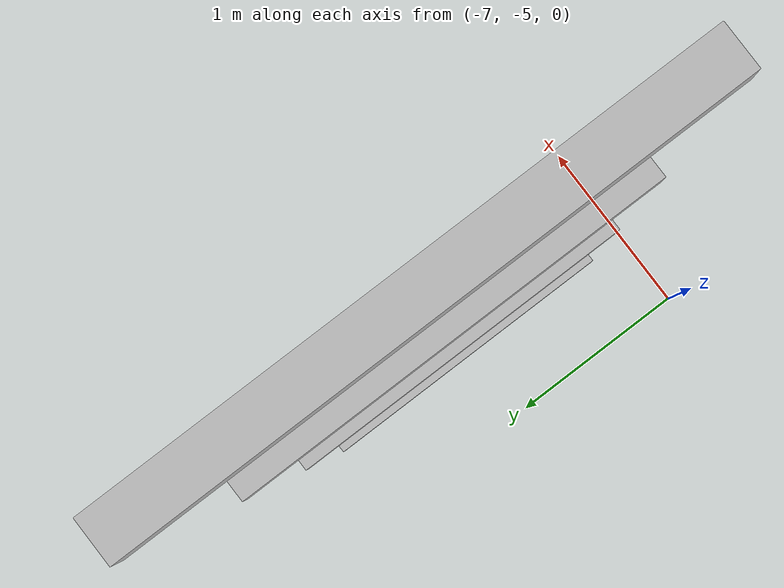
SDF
<sdf version="1.7">
 <world name="default">
  <model name="orthogonal_747_2.000.15_TS">
   <static>1</static>
   <link name="y_link_0_0_0">
    <inertial>
     <mass>1</mass>
     <inertia>
      <ixx>0.166667</ixx>
      <ixy>0</ixy>
      <ixz>0</ixz>
      <iyy>0.166667</iyy>
      <iyz>0</iyz>
      <izz>0.166667</izz>
     </inertia>
    </inertial>
    <pose>0 1.075 1.075 0 -0 0</pose>
    <visual name="visual_0">
     <laser_retro>8</laser_retro>
     <geometry><box><size>0.15 1e-06 0.15</size></box></geometry>
     <material>
      <script><name>Gazebo/Grey</name><uri>file://media/materials/scripts/gazebo.material</uri></script>
      <shader type="pixel"><normal_map>__default__</normal_map></shader>
      <ambient>0.678 0.498 0.659 1</ambient>
      <diffuse>0.7 0.7 0.7 1</diffuse>
      <specular>0.01 0.01 0.01 1</specular>
      <emissive>0 0 0 1</emissive>
     </material>
     <pose>0 -1 0 0 -0 0</pose>
     <transparency>1</transparency>
    </visual>
    <visual name="visual_1">
     <laser_retro>9</laser_retro>
     <geometry><box><size>0.15 1e-06 0.15</size></box></geometry>
     <material>
      <script><name>Gazebo/Grey</name><uri>file://media/materials/scripts/gazebo.material</uri></script>
      <shader type="pixel"><normal_map>__default__</normal_map></shader>
      <ambient>0.447 0.624 0.812 1</ambient>
      <diffuse>0.7 0.7 0.7 1</diffuse>
      <specular>0.01 0.01 0.01 1</specular>
      <emissive>0 0 0 1</emissive>
     </material>
     <pose>0 1 0 0 -0 0</pose>
     <transparency>1</transparency>
    </visual>
    <visual name="visual_2">
     <laser_retro>10</laser_retro>
     <geometry><box><size>0.15 2 1e-06</size></box></geometry>
     <material>
      <script><name>Gazebo/Grey</name><uri>file://media/materials/scripts/gazebo.material</uri></script>
      <shader type="pixel"><normal_map>__default__</normal_map></shader>
      <ambient>0.988 0.686 0.243 1</ambient>
      <diffuse>0.7 0.7 0.7 1</diffuse>
      <specular>0.01 0.01 0.01 1</specular>
      <emissive>0 0 0 1</emissive>
     </material>
     <pose>0 0 -0.075 0 -0 0</pose>
     <transparency>1</transparency>
    </visual>
    <visual name="visual_3">
     <laser_retro>11</laser_retro>
     <geometry><box><size>1e-06 2 0.15</size></box></geometry>
     <material>
      <script><name>Gazebo/Grey</name><uri>file://media/materials/scripts/gazebo.material</uri></script>
      <shader type="pixel"><normal_map>__default__</normal_map></shader>
      <ambient>0.988 0.914 0.31 1</ambient>
      <diffuse>0.7 0.7 0.7 1</diffuse>
      <specular>0.01 0.01 0.01 1</specular>
      <emissive>0 0 0 1</emissive>
     </material>
     <pose>0.075 0 0 0 -0 0</pose>
     <transparency>1</transparency>
    </visual>
    <visual name="visual_4">
     <laser_retro>12</laser_retro>
     <geometry><box><size>0.15 2 1e-06</size></box></geometry>
     <material>
      <script><name>Gazebo/Grey</name><uri>file://media/materials/scripts/gazebo.material</uri></script>
      <shader type="pixel"><normal_map>__default__</normal_map></shader>
      <ambient>0.937 0.161 0.161 1</ambient>
      <diffuse>0.7 0.7 0.7 1</diffuse>
      <specular>0.01 0.01 0.01 1</specular>
      <emissive>0 0 0 1</emissive>
     </material>
     <pose>0 0 0.075 0 -0 0</pose>
     <transparency>1</transparency>
    </visual>
    <visual name="visual_5">
     <laser_retro>13</laser_retro>
     <geometry><box><size>1e-06 2 0.15</size></box></geometry>
     <material>
      <script><name>Gazebo/Grey</name><uri>file://media/materials/scripts/gazebo.material</uri></script>
      <shader type="pixel"><normal_map>__default__</normal_map></shader>
      <ambient>0.541 0.886 0.204 1</ambient>
      <diffuse>0.7 0.7 0.7 1</diffuse>
      <specular>0.01 0.01 0.01 1</specular>
      <emissive>0 0 0 1</emissive>
     </material>
     <pose>-0.075 0 0 0 -0 0</pose>
     <transparency>1</transparency>
    </visual>
    <visual name="visual_texture">
     <geometry><box><size>0.149985 1.9998 0.149985</size></box></geometry>
     <material>
      <script>
       <uri>model://BASE_MODELS/simple_block_v2_textured/materials/scripts</uri>
       <uri>model://BASE_MODELS/simple_block_v2_textured/materials/textures</uri>
       <name>metal</name>
      </script>
     </material>
     <laser_retro>14</laser_retro>
    </visual>
    <collision name="collision">
     <geometry><box><size>0.15 2 0.15</size></box></geometry>
     <surface>
      <friction>
       <ode><mu>1</mu><mu2>1</mu2><fdir1>0 0 0</fdir1><slip1>0</slip1><slip2>0</slip2></ode>
       <torsional>
        <coefficient>1</coefficient>
        <patch_radius>0</patch_radius>
        <surface_radius>0</surface_radius>
        <use_patch_radius>1</use_patch_radius>
        <ode><slip>0</slip></ode>
       </torsional>
      </friction>
      <bounce><restitution_coefficient>0</restitution_coefficient><threshold>1e+06</threshold></bounce>
      <contact>
       <collide_without_contact>0</collide_without_contact>
       <collide_without_contact_bitmask>1</collide_without_contact_bitmask>
       <collide_bitmask>1</collide_bitmask>
       <ode>
        <soft_cfm>0</soft_cfm>
        <soft_erp>0.2</soft_erp>
        <kp>1e+13</kp>
        <kd>1</kd>
        <max_vel>0.01</max_vel>
        <min_depth>0</min_depth>
       </ode>
       <bullet>
        <split_impulse>1</split_impulse>
        <split_impulse_penetration_threshold>-0.01</split_impulse_penetration_threshold>
        <soft_cfm>0</soft_cfm>
        <soft_erp>0.2</soft_erp>
        <kp>1e+13</kp>
        <kd>1</kd>
       </bullet>
      </contact>
     </surface>
    </collision>
   </link>
   <link name="y_link_1_0_0">
    <inertial>
     <mass>1</mass>
     <inertia>
      <ixx>0.166667</ixx>
      <ixy>0</ixy>
      <ixz>0</ixz>
      <iyy>0.166667</iyy>
      <iyz>0</iyz>
      <izz>0.166667</izz>
     </inertia>
    </inertial>
    <pose>0 1.075 3.225 0 -0 0</pose>
    <visual name="visual_0">
     <laser_retro>757</laser_retro>
     <geometry><box><size>0.15 1e-06 0.15</size></box></geometry>
     <material>
      <script><name>Gazebo/Grey</name><uri>file://media/materials/scripts/gazebo.material</uri></script>
      <shader type="pixel"><normal_map>__default__</normal_map></shader>
      <ambient>0.678 0.498 0.659 1</ambient>
      <diffuse>0.7 0.7 0.7 1</diffuse>
      <specular>0.01 0.01 0.01 1</specular>
      <emissive>0 0 0 1</emissive>
     </material>
     <pose>0 -1 0 0 -0 0</pose>
     <transparency>1</transparency>
    </visual>
    <visual name="visual_1">
     <laser_retro>758</laser_retro>
     <geometry><box><size>0.15 1e-06 0.15</size></box></geometry>
     <material>
      <script><name>Gazebo/Grey</name><uri>file://media/materials/scripts/gazebo.material</uri></script>
      <shader type="pixel"><normal_map>__default__</normal_map></shader>
      <ambient>0.447 0.624 0.812 1</ambient>
      <diffuse>0.7 0.7 0.7 1</diffuse>
      <specular>0.01 0.01 0.01 1</specular>
      <emissive>0 0 0 1</emissive>
     </material>
     <pose>0 1 0 0 -0 0</pose>
     <transparency>1</transparency>
    </visual>
    <visual name="visual_2">
     <laser_retro>759</laser_retro>
     <geometry><box><size>0.15 2 1e-06</size></box></geometry>
     <material>
      <script><name>Gazebo/Grey</name><uri>file://media/materials/scripts/gazebo.material</uri></script>
      <shader type="pixel"><normal_map>__default__</normal_map></shader>
      <ambient>0.988 0.686 0.243 1</ambient>
      <diffuse>0.7 0.7 0.7 1</diffuse>
      <specular>0.01 0.01 0.01 1</specular>
      <emissive>0 0 0 1</emissive>
     </material>
     <pose>0 0 -0.075 0 -0 0</pose>
     <transparency>1</transparency>
    </visual>
    <visual name="visual_3">
     <laser_retro>760</laser_retro>
     <geometry><box><size>1e-06 2 0.15</size></box></geometry>
     <material>
      <script><name>Gazebo/Grey</name><uri>file://media/materials/scripts/gazebo.material</uri></script>
      <shader type="pixel"><normal_map>__default__</normal_map></shader>
      <ambient>0.988 0.914 0.31 1</ambient>
      <diffuse>0.7 0.7 0.7 1</diffuse>
      <specular>0.01 0.01 0.01 1</specular>
      <emissive>0 0 0 1</emissive>
     </material>
     <pose>0.075 0 0 0 -0 0</pose>
     <transparency>1</transparency>
    </visual>
    <visual name="visual_4">
     <laser_retro>761</laser_retro>
     <geometry><box><size>0.15 2 1e-06</size></box></geometry>
     <material>
      <script><name>Gazebo/Grey</name><uri>file://media/materials/scripts/gazebo.material</uri></script>
      <shader type="pixel"><normal_map>__default__</normal_map></shader>
      <ambient>0.937 0.161 0.161 1</ambient>
      <diffuse>0.7 0.7 0.7 1</diffuse>
      <specular>0.01 0.01 0.01 1</specular>
      <emissive>0 0 0 1</emissive>
     </material>
     <pose>0 0 0.075 0 -0 0</pose>
     <transparency>1</transparency>
    </visual>
    <visual name="visual_5">
     <laser_retro>762</laser_retro>
     <geometry><box><size>1e-06 2 0.15</size></box></geometry>
     <material>
      <script><name>Gazebo/Grey</name><uri>file://media/materials/scripts/gazebo.material</uri></script>
      <shader type="pixel"><normal_map>__default__</normal_map></shader>
      <ambient>0.541 0.886 0.204 1</ambient>
      <diffuse>0.7 0.7 0.7 1</diffuse>
      <specular>0.01 0.01 0.01 1</specular>
      <emissive>0 0 0 1</emissive>
     </material>
     <pose>-0.075 0 0 0 -0 0</pose>
     <transparency>1</transparency>
    </visual>
    <visual name="visual_texture">
     <geometry><box><size>0.149985 1.9998 0.149985</size></box></geometry>
     <material>
      <script>
       <uri>model://BASE_MODELS/simple_block_v2_textured/materials/scripts</uri>
       <uri>model://BASE_MODELS/simple_block_v2_textured/materials/textures</uri>
       <name>metal</name>
      </script>
     </material>
     <laser_retro>763</laser_retro>
    </visual>
    <collision name="collision">
     <geometry><box><size>0.15 2 0.15</size></box></geometry>
     <surface>
      <friction>
       <ode><mu>1</mu><mu2>1</mu2><fdir1>0 0 0</fdir1><slip1>0</slip1><slip2>0</slip2></ode>
       <torsional>
        <coefficient>1</coefficient>
        <patch_radius>0</patch_radius>
        <surface_radius>0</surface_radius>
        <use_patch_radius>1</use_patch_radius>
        <ode><slip>0</slip></ode>
       </torsional>
      </friction>
      <bounce><restitution_coefficient>0</restitution_coefficient><threshold>1e+06</threshold></bounce>
      <contact>
       <collide_without_contact>0</collide_without_contact>
       <collide_without_contact_bitmask>1</collide_without_contact_bitmask>
       <collide_bitmask>1</collide_bitmask>
       <ode>
        <soft_cfm>0</soft_cfm>
        <soft_erp>0.2</soft_erp>
        <kp>1e+13</kp>
        <kd>1</kd>
        <max_vel>0.01</max_vel>
        <min_depth>0</min_depth>
       </ode>
       <bullet>
        <split_impulse>1</split_impulse>
        <split_impulse_penetration_threshold>-0.01</split_impulse_penetration_threshold>
        <soft_cfm>0</soft_cfm>
        <soft_erp>0.2</soft_erp>
        <kp>1e+13</kp>
        <kd>1</kd>
       </bullet>
      </contact>
     </surface>
    </collision>
   </link>
   <link name="y_link_2_0_0">
    <inertial>
     <mass>1</mass>
     <inertia>
      <ixx>0.166667</ixx>
      <ixy>0</ixy>
      <ixz>0</ixz>
      <iyy>0.166667</iyy>
      <iyz>0</iyz>
      <izz>0.166667</izz>
     </inertia>
    </inertial>
    <pose>0 1.075 5.375 0 -0 0</pose>
    <visual name="visual_0">
     <laser_retro>1660</laser_retro>
     <geometry><box><size>0.15 1e-06 0.15</size></box></geometry>
     <material>
      <script><name>Gazebo/Grey</name><uri>file://media/materials/scripts/gazebo.material</uri></script>
      <shader type="pixel"><normal_map>__default__</normal_map></shader>
      <ambient>0.678 0.498 0.659 1</ambient>
      <diffuse>0.7 0.7 0.7 1</diffuse>
      <specular>0.01 0.01 0.01 1</specular>
      <emissive>0 0 0 1</emissive>
     </material>
     <pose>0 -1 0 0 -0 0</pose>
     <transparency>1</transparency>
    </visual>
    <visual name="visual_1">
     <laser_retro>1661</laser_retro>
     <geometry><box><size>0.15 1e-06 0.15</size></box></geometry>
     <material>
      <script><name>Gazebo/Grey</name><uri>file://media/materials/scripts/gazebo.material</uri></script>
      <shader type="pixel"><normal_map>__default__</normal_map></shader>
      <ambient>0.447 0.624 0.812 1</ambient>
      <diffuse>0.7 0.7 0.7 1</diffuse>
      <specular>0.01 0.01 0.01 1</specular>
      <emissive>0 0 0 1</emissive>
     </material>
     <pose>0 1 0 0 -0 0</pose>
     <transparency>1</transparency>
    </visual>
    <visual name="visual_2">
     <laser_retro>1662</laser_retro>
     <geometry><box><size>0.15 2 1e-06</size></box></geometry>
     <material>
      <script><name>Gazebo/Grey</name><uri>file://media/materials/scripts/gazebo.material</uri></script>
      <shader type="pixel"><normal_map>__default__</normal_map></shader>
      <ambient>0.988 0.686 0.243 1</ambient>
      <diffuse>0.7 0.7 0.7 1</diffuse>
      <specular>0.01 0.01 0.01 1</specular>
      <emissive>0 0 0 1</emissive>
     </material>
     <pose>0 0 -0.075 0 -0 0</pose>
     <transparency>1</transparency>
    </visual>
    <visual name="visual_3">
     <laser_retro>1663</laser_retro>
     <geometry><box><size>1e-06 2 0.15</size></box></geometry>
     <material>
      <script><name>Gazebo/Grey</name><uri>file://media/materials/scripts/gazebo.material</uri></script>
      <shader type="pixel"><normal_map>__default__</normal_map></shader>
      <ambient>0.988 0.914 0.31 1</ambient>
      <diffuse>0.7 0.7 0.7 1</diffuse>
      <specular>0.01 0.01 0.01 1</specular>
      <emissive>0 0 0 1</emissive>
     </material>
     <pose>0.075 0 0 0 -0 0</pose>
     <transparency>1</transparency>
    </visual>
    <visual name="visual_4">
     <laser_retro>1664</laser_retro>
     <geometry><box><size>0.15 2 1e-06</size></box></geometry>
     <material>
      <script><name>Gazebo/Grey</name><uri>file://media/materials/scripts/gazebo.material</uri></script>
      <shader type="pixel"><normal_map>__default__</normal_map></shader>
      <ambient>0.937 0.161 0.161 1</ambient>
      <diffuse>0.7 0.7 0.7 1</diffuse>
      <specular>0.01 0.01 0.01 1</specular>
      <emissive>0 0 0 1</emissive>
     </material>
     <pose>0 0 0.075 0 -0 0</pose>
     <transparency>1</transparency>
    </visual>
    <visual name="visual_5">
     <laser_retro>1665</laser_retro>
     <geometry><box><size>1e-06 2 0.15</size></box></geometry>
     <material>
      <script><name>Gazebo/Grey</name><uri>file://media/materials/scripts/gazebo.material</uri></script>
      <shader type="pixel"><normal_map>__default__</normal_map></shader>
      <ambient>0.541 0.886 0.204 1</ambient>
      <diffuse>0.7 0.7 0.7 1</diffuse>
      <specular>0.01 0.01 0.01 1</specular>
      <emissive>0 0 0 1</emissive>
     </material>
     <pose>-0.075 0 0 0 -0 0</pose>
     <transparency>1</transparency>
    </visual>
    <visual name="visual_texture">
     <geometry><box><size>0.149985 1.9998 0.149985</size></box></geometry>
     <material>
      <script>
       <uri>model://BASE_MODELS/simple_block_v2_textured/materials/scripts</uri>
       <uri>model://BASE_MODELS/simple_block_v2_textured/materials/textures</uri>
       <name>metal</name>
      </script>
     </material>
     <laser_retro>1666</laser_retro>
    </visual>
    <collision name="collision">
     <geometry><box><size>0.15 2 0.15</size></box></geometry>
     <surface>
      <friction>
       <ode><mu>1</mu><mu2>1</mu2><fdir1>0 0 0</fdir1><slip1>0</slip1><slip2>0</slip2></ode>
       <torsional>
        <coefficient>1</coefficient>
        <patch_radius>0</patch_radius>
        <surface_radius>0</surface_radius>
        <use_patch_radius>1</use_patch_radius>
        <ode><slip>0</slip></ode>
       </torsional>
      </friction>
      <bounce><restitution_coefficient>0</restitution_coefficient><threshold>1e+06</threshold></bounce>
      <contact>
       <collide_without_contact>0</collide_without_contact>
       <collide_without_contact_bitmask>1</collide_without_contact_bitmask>
       <collide_bitmask>1</collide_bitmask>
       <ode>
        <soft_cfm>0</soft_cfm>
        <soft_erp>0.2</soft_erp>
        <kp>1e+13</kp>
        <kd>1</kd>
        <max_vel>0.01</max_vel>
        <min_depth>0</min_depth>
       </ode>
       <bullet>
        <split_impulse>1</split_impulse>
        <split_impulse_penetration_threshold>-0.01</split_impulse_penetration_threshold>
        <soft_cfm>0</soft_cfm>
        <soft_erp>0.2</soft_erp>
        <kp>1e+13</kp>
        <kd>1</kd>
       </bullet>
      </contact>
     </surface>
    </collision>
   </link>
   <link name="y_link_3_0_0">
    <inertial>
     <mass>1</mass>
     <inertia>
      <ixx>0.166667</ixx>
      <ixy>0</ixy>
      <ixz>0</ixz>
      <iyy>0.166667</iyy>
      <iyz>0</iyz>
      <izz>0.166667</izz>
     </inertia>
    </inertial>
    <pose>0 1.075 7.525 0 -0 0</pose>
    <visual name="visual_0">
     <laser_retro>2563</laser_retro>
     <geometry><box><size>0.15 1e-06 0.15</size></box></geometry>
     <material>
      <script><name>Gazebo/Grey</name><uri>file://media/materials/scripts/gazebo.material</uri></script>
      <shader type="pixel"><normal_map>__default__</normal_map></shader>
      <ambient>0.678 0.498 0.659 1</ambient>
      <diffuse>0.7 0.7 0.7 1</diffuse>
      <specular>0.01 0.01 0.01 1</specular>
      <emissive>0 0 0 1</emissive>
     </material>
     <pose>0 -1 0 0 -0 0</pose>
     <transparency>1</transparency>
    </visual>
    <visual name="visual_1">
     <laser_retro>2564</laser_retro>
     <geometry><box><size>0.15 1e-06 0.15</size></box></geometry>
     <material>
      <script><name>Gazebo/Grey</name><uri>file://media/materials/scripts/gazebo.material</uri></script>
      <shader type="pixel"><normal_map>__default__</normal_map></shader>
      <ambient>0.447 0.624 0.812 1</ambient>
      <diffuse>0.7 0.7 0.7 1</diffuse>
      <specular>0.01 0.01 0.01 1</specular>
      <emissive>0 0 0 1</emissive>
     </material>
     <pose>0 1 0 0 -0 0</pose>
     <transparency>1</transparency>
    </visual>
    <visual name="visual_2">
     <laser_retro>2565</laser_retro>
     <geometry><box><size>0.15 2 1e-06</size></box></geometry>
     <material>
      <script><name>Gazebo/Grey</name><uri>file://media/materials/scripts/gazebo.material</uri></script>
      <shader type="pixel"><normal_map>__default__</normal_map></shader>
      <ambient>0.988 0.686 0.243 1</ambient>
      <diffuse>0.7 0.7 0.7 1</diffuse>
      <specular>0.01 0.01 0.01 1</specular>
      <emissive>0 0 0 1</emissive>
     </material>
     <pose>0 0 -0.075 0 -0 0</pose>
     <transparency>1</transparency>
    </visual>
    <visual name="visual_3">
     <laser_retro>2566</laser_retro>
     <geometry><box><size>1e-06 2 0.15</size></box></geometry>
     <material>
      <script><name>Gazebo/Grey</name><uri>file://media/materials/scripts/gazebo.material</uri></script>
      <shader type="pixel"><normal_map>__default__</normal_map></shader>
      <ambient>0.988 0.914 0.31 1</ambient>
      <diffuse>0.7 0.7 0.7 1</diffuse>
      <specular>0.01 0.01 0.01 1</specular>
      <emissive>0 0 0 1</emissive>
     </material>
     <pose>0.075 0 0 0 -0 0</pose>
     <transparency>1</transparency>
    </visual>
    <visual name="visual_4">
     <laser_retro>2567</laser_retro>
     <geometry><box><size>0.15 2 1e-06</size></box></geometry>
     <material>
      <script><name>Gazebo/Grey</name><uri>file://media/materials/scripts/gazebo.material</uri></script>
      <shader type="pixel"><normal_map>__default__</normal_map></shader>
      <ambient>0.937 0.161 0.161 1</ambient>
      <diffuse>0.7 0.7 0.7 1</diffuse>
      <specular>0.01 0.01 0.01 1</specular>
      <emissive>0 0 0 1</emissive>
     </material>
     <pose>0 0 0.075 0 -0 0</pose>
     <transparency>1</transparency>
    </visual>
    <visual name="visual_5">
     <laser_retro>2568</laser_retro>
     <geometry><box><size>1e-06 2 0.15</size></box></geometry>
     <material>
      <script><name>Gazebo/Grey</name><uri>file://media/materials/scripts/gazebo.material</uri></script>
      <shader type="pixel"><normal_map>__default__</normal_map></shader>
      <ambient>0.541 0.886 0.204 1</ambient>
      <diffuse>0.7 0.7 0.7 1</diffuse>
      <specular>0.01 0.01 0.01 1</specular>
      <emissive>0 0 0 1</emissive>
     </material>
     <pose>-0.075 0 0 0 -0 0</pose>
     <transparency>1</transparency>
    </visual>
    <visual name="visual_texture">
     <geometry><box><size>0.149985 1.9998 0.149985</size></box></geometry>
     <material>
      <script>
       <uri>model://BASE_MODELS/simple_block_v2_textured/materials/scripts</uri>
       <uri>model://BASE_MODELS/simple_block_v2_textured/materials/textures</uri>
       <name>metal</name>
      </script>
     </material>
     <laser_retro>2569</laser_retro>
    </visual>
    <collision name="collision">
     <geometry><box><size>0.15 2 0.15</size></box></geometry>
     <surface>
      <friction>
       <ode><mu>1</mu><mu2>1</mu2><fdir1>0 0 0</fdir1><slip1>0</slip1><slip2>0</slip2></ode>
       <torsional>
        <coefficient>1</coefficient>
        <patch_radius>0</patch_radius>
        <surface_radius>0</surface_radius>
        <use_patch_radius>1</use_patch_radius>
        <ode><slip>0</slip></ode>
       </torsional>
      </friction>
      <bounce><restitution_coefficient>0</restitution_coefficient><threshold>1e+06</threshold></bounce>
      <contact>
       <collide_without_contact>0</collide_without_contact>
       <collide_without_contact_bitmask>1</collide_without_contact_bitmask>
       <collide_bitmask>1</collide_bitmask>
       <ode>
        <soft_cfm>0</soft_cfm>
        <soft_erp>0.2</soft_erp>
        <kp>1e+13</kp>
        <kd>1</kd>
        <max_vel>0.01</max_vel>
        <min_depth>0</min_depth>
       </ode>
       <bullet>
        <split_impulse>1</split_impulse>
        <split_impulse_penetration_threshold>-0.01</split_impulse_penetration_threshold>
        <soft_cfm>0</soft_cfm>
        <soft_erp>0.2</soft_erp>
        <kp>1e+13</kp>
        <kd>1</kd>
       </bullet>
      </contact>
     </surface>
    </collision>
   </link>
   <pose>-6.47624 -5 -2.5 0 -0 0</pose>
  </model>
 </world>
</sdf>
